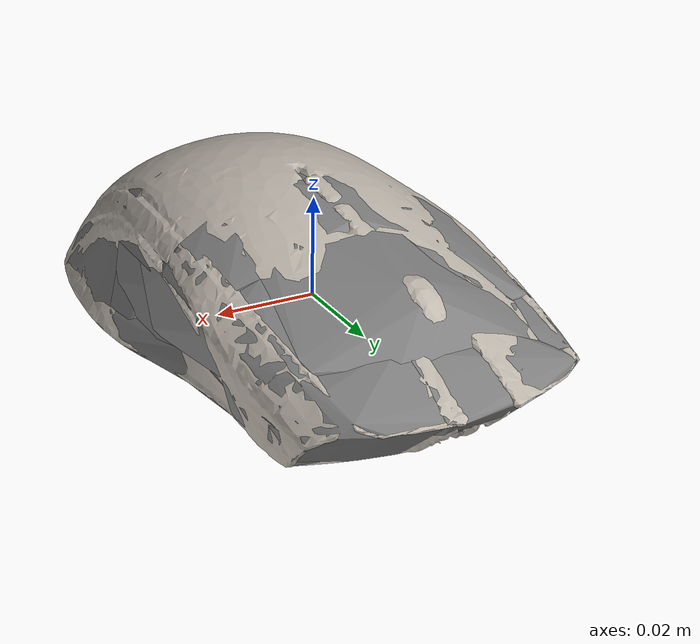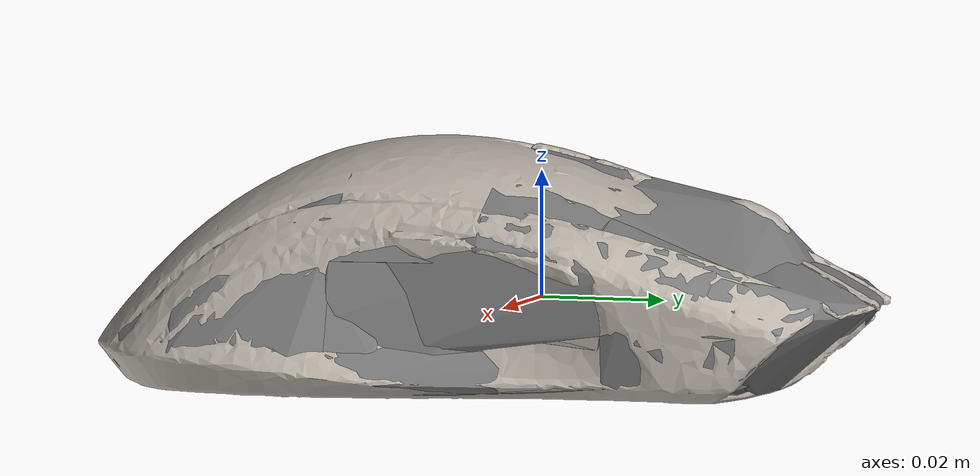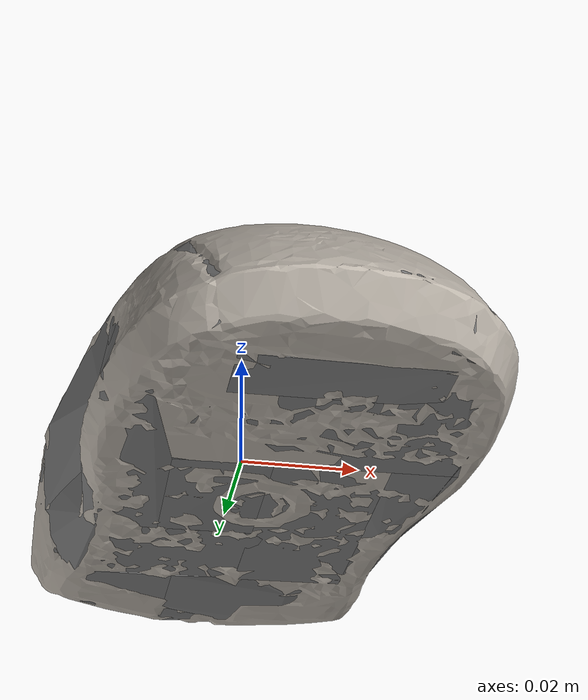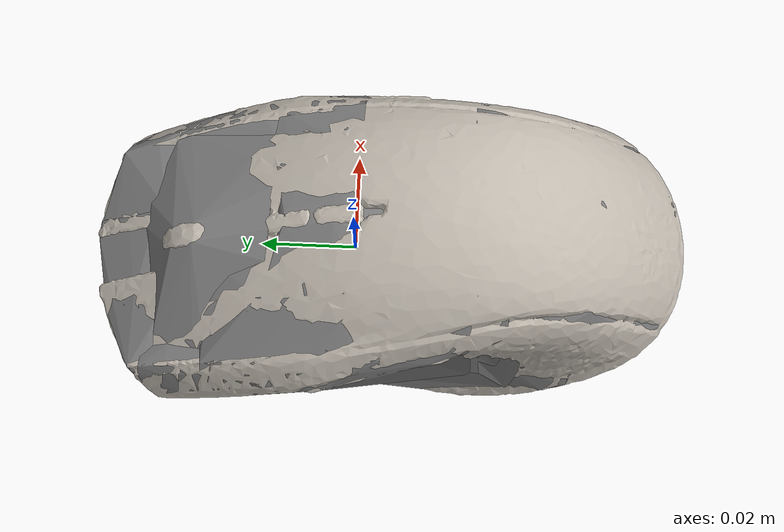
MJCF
<mujoco model="mouse_taipan">
  <default>
    <default class="visual">
      <geom group="1" type="mesh" contype="0" conaffinity="0"/>
    </default>
    <default class="collision">
      <geom group="0" type="mesh"/>
    </default>
  </default>
  <asset>
    <texture type="2d" name="texture" file="texture.png"/>
    <material name="material_0" texture="texture" specular="0.5" shininess="0.5"/>
    <mesh name="model" file="model.obj"/>
    <mesh name="model_collision_0" file="model_collision_0.obj"/>
    <mesh name="model_collision_1" file="model_collision_1.obj"/>
    <mesh name="model_collision_2" file="model_collision_2.obj"/>
    <mesh name="model_collision_3" file="model_collision_3.obj"/>
    <mesh name="model_collision_4" file="model_collision_4.obj"/>
    <mesh name="model_collision_5" file="model_collision_5.obj"/>
    <mesh name="model_collision_6" file="model_collision_6.obj"/>
    <mesh name="model_collision_7" file="model_collision_7.obj"/>
    <mesh name="model_collision_8" file="model_collision_8.obj"/>
    <mesh name="model_collision_9" file="model_collision_9.obj"/>
    <mesh name="model_collision_10" file="model_collision_10.obj"/>
    <mesh name="model_collision_11" file="model_collision_11.obj"/>
    <mesh name="model_collision_12" file="model_collision_12.obj"/>
    <mesh name="model_collision_13" file="model_collision_13.obj"/>
    <mesh name="model_collision_14" file="model_collision_14.obj"/>
    <mesh name="model_collision_15" file="model_collision_15.obj"/>
    <mesh name="model_collision_16" file="model_collision_16.obj"/>
    <mesh name="model_collision_17" file="model_collision_17.obj"/>
    <mesh name="model_collision_18" file="model_collision_18.obj"/>
    <mesh name="model_collision_19" file="model_collision_19.obj"/>
    <mesh name="model_collision_20" file="model_collision_20.obj"/>
    <mesh name="model_collision_21" file="model_collision_21.obj"/>
    <mesh name="model_collision_22" file="model_collision_22.obj"/>
    <mesh name="model_collision_23" file="model_collision_23.obj"/>
    <mesh name="model_collision_24" file="model_collision_24.obj"/>
    <mesh name="model_collision_25" file="model_collision_25.obj"/>
  </asset>

  <worldbody>
    <body>
      <body name="object">
        <body name="mouse_taipan" pos="0 0 0" quat="1 0 0 0">
          <inertial pos="0 0 0" mass="0.2" diaginertia="1e-3 1e-3 1e-3" />
          <geom material="material_0" mesh="model" class="visual"/>
          <geom mesh="model_collision_0" class="collision"/>
          <geom mesh="model_collision_1" class="collision"/>
          <geom mesh="model_collision_2" class="collision"/>
          <geom mesh="model_collision_3" class="collision"/>
          <geom mesh="model_collision_4" class="collision"/>
          <geom mesh="model_collision_5" class="collision"/>
          <geom mesh="model_collision_6" class="collision"/>
          <geom mesh="model_collision_7" class="collision"/>
          <geom mesh="model_collision_8" class="collision"/>
          <geom mesh="model_collision_9" class="collision"/>
          <geom mesh="model_collision_10" class="collision"/>
          <geom mesh="model_collision_11" class="collision"/>
          <geom mesh="model_collision_12" class="collision"/>
          <geom mesh="model_collision_13" class="collision"/>
          <geom mesh="model_collision_14" class="collision"/>
          <geom mesh="model_collision_15" class="collision"/>
          <geom mesh="model_collision_16" class="collision"/>
          <geom mesh="model_collision_17" class="collision"/>
          <geom mesh="model_collision_18" class="collision"/>
          <geom mesh="model_collision_19" class="collision"/>
          <geom mesh="model_collision_20" class="collision"/>
          <geom mesh="model_collision_21" class="collision"/>
          <geom mesh="model_collision_22" class="collision"/>
          <geom mesh="model_collision_23" class="collision"/>
          <geom mesh="model_collision_24" class="collision"/>
          <geom mesh="model_collision_25" class="collision"/>
        </body>
      </body>
      <site rgba="0 0 0 0" size="0.01" pos="0 0 -0.0146" quat="1 0 0 0" name="bottom_site"/>
      <site rgba="0 0 0 0" size="0.01" pos="0 0 0.0253" quat="1 0 0 0" name="top_site"/>
      <site rgba="0 0 0 0" size="0.01" pos="0.0711 0 0" quat="1 0 0 0" name="horizontal_radius_site"/>
    </body>
  </worldbody>
</mujoco>
